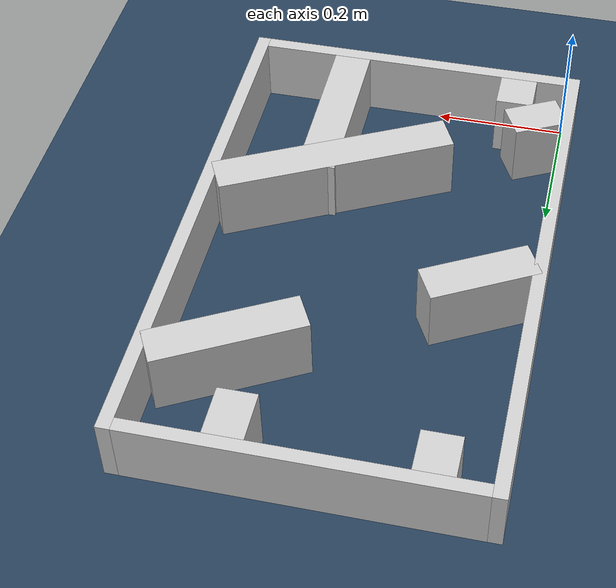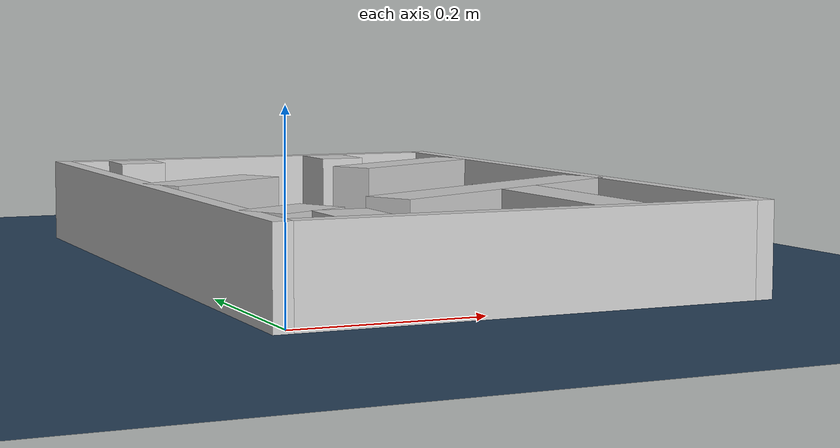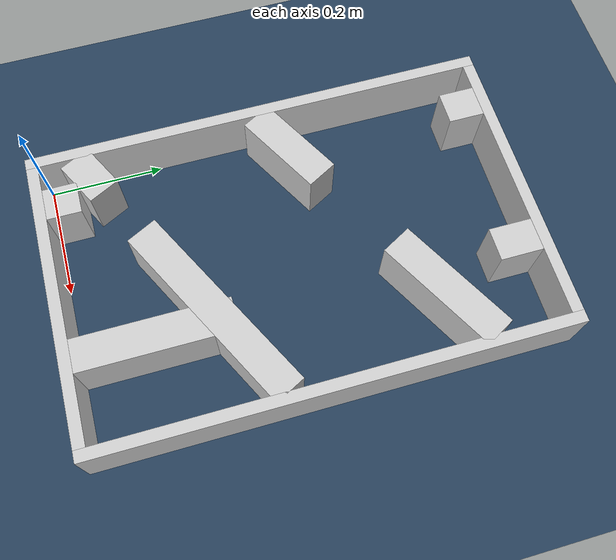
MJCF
<?xml version="1.0" ?>
<mujoco model="generated_real_template">
  <compiler angle="degree"/>
  <option timestep="0.002" integrator="implicitfast" iterations="100" cone="elliptic"/>
  <default>
    <geom density="1"/>
  </default>
  <asset>
    <texture builtin="gradient" height="3072" rgb1="0.3 0.5 0.7" rgb2="0 0 0" type="skybox" width="512"/>
    <texture builtin="checker" height="300" mark="edge" markrgb="0.8 0.8 0.8" name="groundplane" rgb1="0.2 0.3 0.4" rgb2="0.1 0.2 0.3" type="2d" width="300"/>
    <material name="groundplane" reflectance="0.2" texrepeat="5 5" texture="groundplane" texuniform="true"/>
  </asset>
  <worldbody>
    <light dir="0 0 -1" directional="true" pos="0 0 1.5"/>
    <geom name="floor" type="plane" condim="4" friction="0.5 0.005 0.001" material="groundplane" size="0 0 0.05"/>
    <body name="walls">
      <geom name="wall_boundary_left" type="box" condim="4" friction="1.0 0.005 0.0001" rgba="0.8 0.8 0.8 1" pos="-0.010000 0.387500 0.050000" euler="0 0 0.000000" size="0.010000 0.407500 0.050000"/>
      <geom name="wall_boundary_right" type="box" condim="4" friction="1.0 0.005 0.0001" rgba="0.8 0.8 0.8 1" pos="0.500000 0.387500 0.050000" euler="0 0 0.000000" size="0.010000 0.407500 0.050000"/>
      <geom name="wall_boundary_bottom" type="box" condim="4" friction="1.0 0.005 0.0001" rgba="0.8 0.8 0.8 1" pos="0.245000 -0.010000 0.050000" euler="0 0 0.000000" size="0.245000 0.010000 0.050000"/>
      <geom name="wall_boundary_top" type="box" condim="4" friction="1.0 0.005 0.0001" rgba="0.8 0.8 0.8 1" pos="0.245000 0.785000 0.050000" euler="0 0 0.000000" size="0.245000 0.010000 0.050000"/>
      <geom name="wall_inner_1_1" type="box" condim="4" friction="1.0 0.005 0.0001" rgba="0.8 0.8 0.8 1" pos="0.347017 0.131624 0.050000" euler="0 0 90.000000" size="0.131624 0.028500 0.050000"/>
      <geom name="wall_inner_1_2" type="box" condim="4" friction="1.0 0.005 0.0001" rgba="0.8 0.8 0.8 1" pos="0.347017 0.737881 0.050000" euler="0 0 90.000000" size="0.037119 0.028500 0.050000"/>
      <geom name="wall_inner_2_1" type="box" condim="4" friction="1.0 0.005 0.0001" rgba="0.8 0.8 0.8 1" pos="0.392103 0.601160 0.050000" euler="0 0 -151.324759" size="0.111583 0.028500 0.050000"/>
      <geom name="wall_inner_2_2" type="box" condim="4" friction="1.0 0.005 0.0001" rgba="0.8 0.8 0.8 1" pos="0.072370 0.426291 0.050000" euler="0 0 -151.324759" size="0.082487 0.028500 0.050000"/>
      <geom name="wall_inner_3_1" type="box" condim="4" friction="1.0 0.005 0.0001" rgba="0.8 0.8 0.8 1" pos="0.075326 0.029489 0.050000" euler="0 0 90.000000" size="0.029489 0.028500 0.050000"/>
      <geom name="wall_inner_3_2" type="box" condim="4" friction="1.0 0.005 0.0001" rgba="0.8 0.8 0.8 1" pos="0.075326 0.743553 0.050000" euler="0 0 90.000000" size="0.031447 0.028500 0.050000"/>
      <geom name="wall_inner_4_1" type="box" condim="4" friction="1.0 0.005 0.0001" rgba="0.8 0.8 0.8 1" pos="0.327498 0.230320 0.050000" euler="0 0 -152.950287" size="0.182461 0.028500 0.050000"/>
      <geom name="wall_inner_4_2" type="box" condim="4" friction="1.0 0.005 0.0001" rgba="0.8 0.8 0.8 1" pos="0.037808 0.082400 0.050000" euler="0 0 -152.950287" size="0.042452 0.028500 0.050000"/>
    </body>
  </worldbody>
</mujoco>
